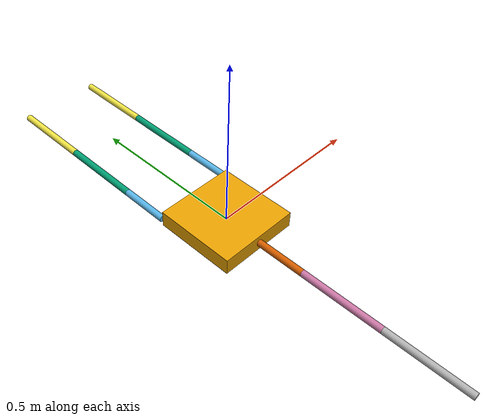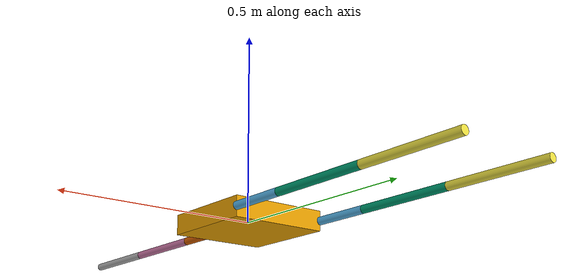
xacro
<?xml version="1.0"?>
<robot xmlns:xacro="http://www.ros.org/wiki/xacro" name="gripper">

    <!-- Include the robot macro -->
    <xacro:include filename="r3_robot.xacro"/>

    <!-- Base Properties -->
    <xacro:property name="m_base" value="1.0" />
    <xacro:property name="base_width" value="0.25" />
    <xacro:property name="depth" value="0.25" />
    <xacro:property name="height" value="0.05" />

    <!-- Create three instances of the robot, rotated to form a gripper -->
    <xacro:r3_robot prefix="arm1" xyz="-${base_width/2} ${depth/2} 0" rpy="${-pi2} 0 0" />
    <xacro:r3_robot prefix="arm2" xyz=" 0.0       -${depth/2} 0" rpy="${-pi2} 0 ${pi}" />
    <xacro:r3_robot prefix="arm3" xyz=" ${base_width/2} ${depth/2} 0" rpy="${-pi2} 0 0" />

    <!-- Optionally, add a base link or other structure to connect the arms -->
    <link name="world"/>

    <link name="p1"/>
    <link name="p2"/>
    <link name="p3"/>

    <link name="base">
        <visual>
            <geometry>
                <box size="${base_width} ${depth} ${height}"/>
            </geometry>
        </visual>
        <collision>
            <origin xyz="0 0 0" rpy="0 0 0"/>
            <geometry>
                <box size="${base_width} ${depth} ${height}"/>
            </geometry>
        </collision>
        <inertial>
            <origin xyz="0 0 0" rpy="0 0 0"/>
            <mass value="${m_base}" />
            <inertia ixx="${1.0/12.0 * m_base * (height*height + depth*depth)}"
                     ixy="0.0" ixz="0.0"
                     iyy="${1.0/12.0 * m_base * (height*height + base_width*base_width)}"
                     iyz="0.0"
                     izz="${1.0/12.0 * m_base * (base_width*base_width + depth*depth)}" />
        </inertial>
    </link>

    <joint name="x_pos" type="prismatic">
        <parent link="world" />
        <child link="p1" />
        <axis xyz="1 0 0"/>
        <limit lower="-100" upper="100" effort="100" velocity="100"/>
    </joint>

    <joint name="y_pos" type="prismatic">
        <parent link="p1" />
        <child link="p2" />
        <axis xyz="0 1 0"/>
        <limit lower="-100" upper="100" effort="100" velocity="100"/>
    </joint>

    <joint name="z_pos" type="prismatic">
        <parent link="p2" />
        <child link="p3" />
        <axis xyz="0 0 1"/>
        <limit lower="-100" upper="100" effort="100" velocity="100"/>
    </joint>

    <joint name="base_joint" type="continuous">
        <parent link="p3" />
        <child link="base" />
        <axis xyz="0 0 1"/>
        <dynamics damping="100.0" friction="0.0"/>
    </joint>

    <joint name="arm1_fix" type="fixed">
        <parent link="base" />
        <child link="arm1_base" />
    </joint>
    <joint name="arm2_fix" type="fixed">
        <parent link="base" />
        <child link="arm2_base" />
    </joint>
    <joint name="arm3_fix" type="fixed">
        <parent link="base" />
        <child link="arm3_base" />
    </joint>
</robot>

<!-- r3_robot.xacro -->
<robot xmlns:xacro="http://www.ros.org/wiki/xacro">

    <xacro:property name="pi2" value="${pi * 0.5}" />

    <xacro:property name="width" value="0.01" />
    <xacro:property name="l1" value="0.15" />
    <xacro:property name="l2" value="0.25" />
    <xacro:property name="l3" value="0.25" />

    <xacro:property name="m1" value="1" />
    <xacro:property name="m2" value="1" />
    <xacro:property name="m3" value="1" />

    <!-- Wrap the entire robot definition in a macro -->
    <xacro:macro name="r3_robot" params="prefix xyz rpy">
        <link name="${prefix}_base"/>

        <link name="${prefix}_link1">
            <visual>
                <origin xyz="0 0 ${l1 * 0.5}" rpy="0 0 0"/>
                <geometry>
                    <cylinder radius="${width}" length="${l1}"/>
                </geometry>
            </visual>
            <collision>
                <origin xyz="0 0 ${l1 * 0.5}" rpy="0 0 0"/>
                <geometry>
                    <cylinder radius="${width}" length="${l1}"/>
                </geometry>
            </collision>
            <inertial>
                <origin xyz="0 0 ${l1 * 0.5}" rpy="0 0 0"/>
                <mass value="${m1}" />
                <inertia ixx="${1.0/12.0 * m1 * (3 * width*width + l1*l1)}"
                        ixy="0.0" ixz="0.0"
                        iyy="${1.0/12.0 * m1 * (3 * width*width + l1*l1)}"
                        iyz="0.0"
                        izz="${1.0/2.0 * m1 * l1*l1}" />
            </inertial>
        </link>
        <link name="${prefix}_link2">
            <visual>
                <origin xyz="0 0 ${l2 * 0.5}" rpy="0 0 0"/>
                <geometry>
                    <cylinder radius="${width}" length="${l2}"/>
                </geometry>
            </visual>
            <collision>
                <origin xyz="0 0 ${l2 * 0.5}" rpy="0 0 0"/>
                <geometry>
                    <cylinder radius="${width}" length="${l2}"/>
                </geometry>
            </collision>
            <inertial>
                <origin xyz="0 0 ${l2 * 0.5}" rpy="0 0 0"/>
                <mass value="${m2}" />
                <inertia ixx="${1.0/12.0 * m2 * (3 * width*width + l2*l2)}"
                        ixy="0.0" ixz="0.0"
                        iyy="${1.0/12.0 * m2 * (3 * width*width + l2*l2)}"
                        iyz="0.0"
                        izz="${1.0/2.0 * m2 * l2*l2}" />
            </inertial>
        </link>
        <link name="${prefix}_link3">
            <visual>
                <origin xyz="0 0 ${l3 * 0.5}" rpy="0 0 0"/>
                <geometry>
                    <cylinder radius="${width}" length="${l3}"/>
                </geometry>
            </visual>
            <collision>
                <origin xyz="0 0 ${l3 * 0.5}" rpy="0 0 0"/>
                <geometry>
                    <cylinder radius="${width}" length="${l3}"/>
                </geometry>
            </collision>
            <inertial>
                <origin xyz="0 0 ${l3 * 0.5}" rpy="0 0 0"/>
                <mass value="${m3}" />
                <inertia ixx="${1.0/12.0 * m3 * (3 * width*width + l3*l3)}"
                        ixy="0.0" ixz="0.0"
                        iyy="${1.0/12.0 * m3 * (3 * width*width + l3*l3)}"
                        iyz="0.0"
                        izz="${1.0/2.0 * m3 * l3*l3}" />
            </inertial>
        </link>

        <joint name="${prefix}_joint1" type="revolute">
            <parent link="${prefix}_base" />
            <child link="${prefix}_link1" />
            <limit effort="30" velocity="1.0" lower="${0}" upper="${pi}" />
            <origin xyz="${xyz}" rpy="${rpy}" />
            <axis xyz="1 0 0" />
        </joint>
        <joint name="${prefix}_joint2" type="revolute">
            <parent link="${prefix}_link1" />
            <child link="${prefix}_link2" />
            <limit effort="30" velocity="1.0" lower="${0}" upper="${pi}" />
            <origin xyz="0 0 ${l1}" rpy="0 0 0" />
            <axis xyz="1 0 0" />
        </joint>
        <joint name="${prefix}_joint3" type="revolute">
            <parent link="${prefix}_link2" />
            <child link="${prefix}_link3" />
            <limit effort="30" velocity="1.0" lower="${0}" upper="${pi}" />
            <origin xyz="0 0 ${l2}" rpy="0 0 0" />
            <axis xyz="1 0 0" />
        </joint>

    </xacro:macro>
</robot>
